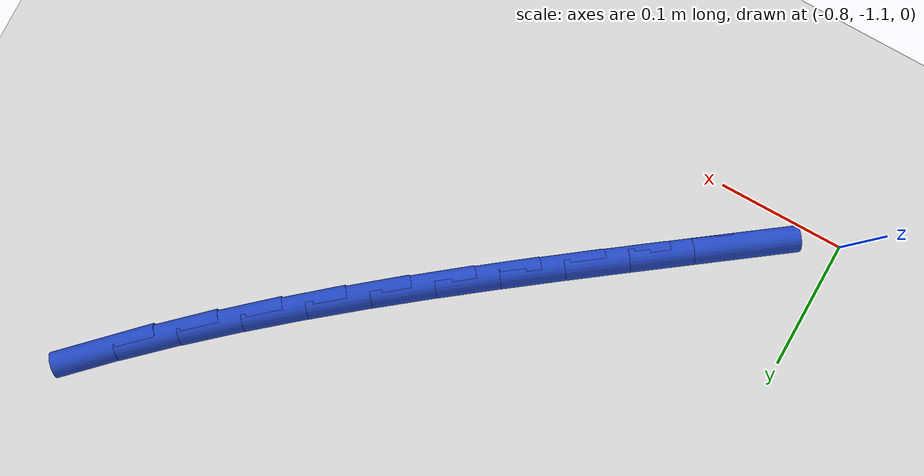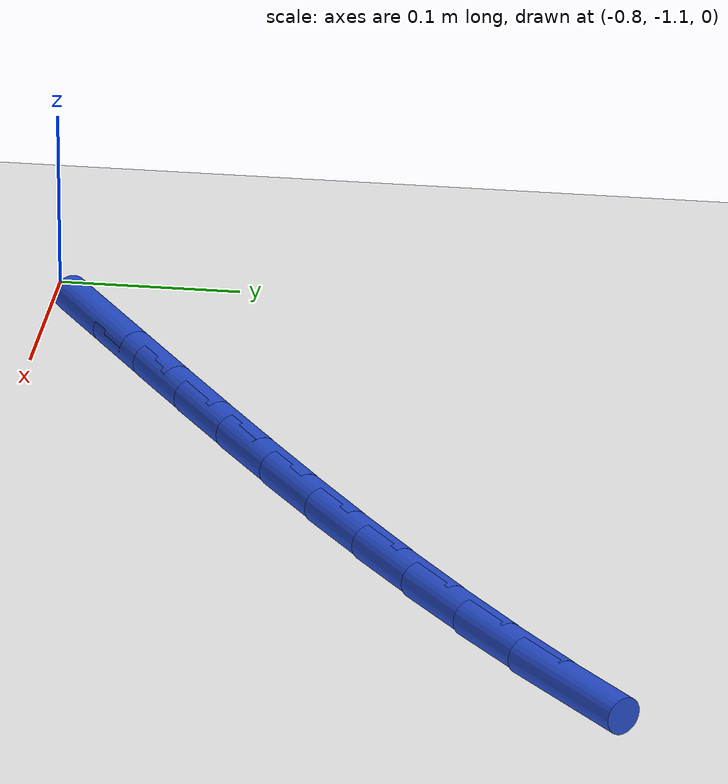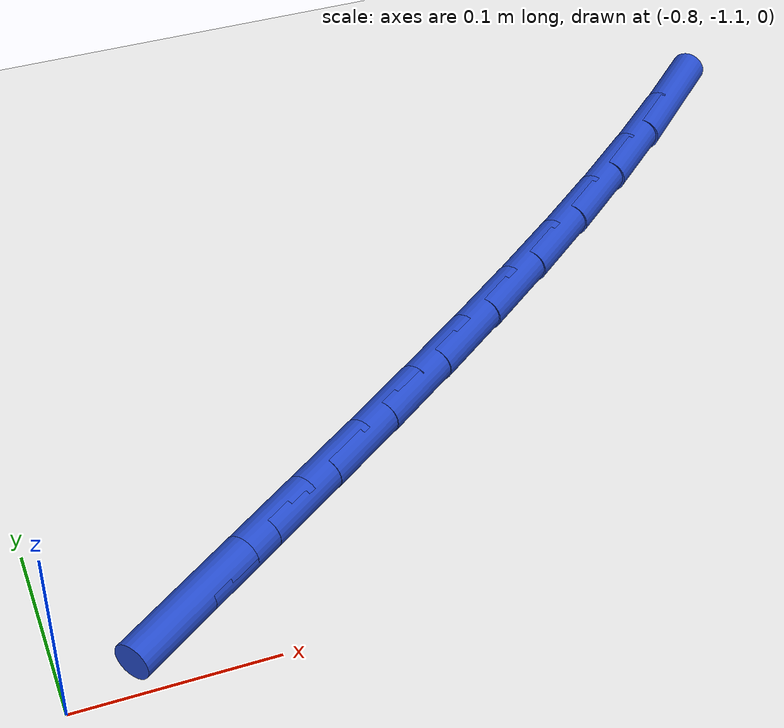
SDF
<sdf version="1.6">
 <world name="default">
  <model name="ground_plane">
   <static>1</static>
   <link name="link">
    <collision name="collision">
     <geometry><plane><normal>0 0 1</normal><size>100 100</size></plane></geometry>
     <surface><friction><ode><mu>100</mu><mu2>50</mu2></ode></friction></surface>
    </collision>
    <visual name="visual">
     <cast_shadows>0</cast_shadows>
     <geometry><plane><normal>0 0 1</normal><size>100 100</size></plane></geometry>
     <material>
      <script><uri>file://media/materials/scripts/gazebo.material</uri><name>Gazebo/WhiteGlow</name></script>
     </material>
    </visual>
   </link>
  </model>
  <model name="line">
   <link name="link_142">
    <pose>-0.7343752056745522 -1.0657094730027785 0.01 0 1.57 0.6196920327149557</pose>
    <collision name="collision">
     <geometry><cylinder><radius>0.01</radius><length>0.08</length></cylinder></geometry>
    </collision>
    <visual name="visual">
     <material>
      <script><name>Gazebo/Blue</name><uri>file://media/materials/scripts/gazebo.material</uri></script>
     </material>
     <geometry><cylinder><radius>0.01</radius><length>0.08</length></cylinder></geometry>
    </visual>
   </link>
   <link name="link_143">
    <pose>-0.6950390158072863 -1.037645297236098 0.01 0 1.57 0.6202710674736999</pose>
    <collision name="collision">
     <geometry><cylinder><radius>0.01</radius><length>0.08</length></cylinder></geometry>
    </collision>
    <visual name="visual">
     <material>
      <script><name>Gazebo/Blue</name><uri>file://media/materials/scripts/gazebo.material</uri></script>
     </material>
     <geometry><cylinder><radius>0.01</radius><length>0.08</length></cylinder></geometry>
    </visual>
   </link>
   <link name="link_144">
    <pose>-0.6556097875732984 -1.0094802776680678 0.01 0 1.57 0.6240919504746925</pose>
    <collision name="collision">
     <geometry><cylinder><radius>0.01</radius><length>0.08</length></cylinder></geometry>
    </collision>
    <visual name="visual">
     <material>
      <script><name>Gazebo/Blue</name><uri>file://media/materials/scripts/gazebo.material</uri></script>
     </material>
     <geometry><cylinder><radius>0.01</radius><length>0.08</length></cylinder></geometry>
    </visual>
   </link>
   <link name="link_145">
    <pose>-0.6162164442827183 -0.9811129492007283 0.01 0 1.57 0.6311474509096743</pose>
    <collision name="collision">
     <geometry><cylinder><radius>0.01</radius><length>0.08</length></cylinder></geometry>
    </collision>
    <visual name="visual">
     <material>
      <script><name>Gazebo/Blue</name><uri>file://media/materials/scripts/gazebo.material</uri></script>
     </material>
     <geometry><cylinder><radius>0.01</radius><length>0.08</length></cylinder></geometry>
    </visual>
   </link>
   <link name="link_146">
    <pose>-0.5769879092456769 -0.9524418467361204 0.01 0 1.57 0.641447163463078</pose>
    <collision name="collision">
     <geometry><cylinder><radius>0.01</radius><length>0.08</length></cylinder></geometry>
    </collision>
    <visual name="visual">
     <material>
      <script><name>Gazebo/Blue</name><uri>file://media/materials/scripts/gazebo.material</uri></script>
     </material>
     <geometry><cylinder><radius>0.01</radius><length>0.08</length></cylinder></geometry>
    </visual>
   </link>
   <link name="link_147">
    <pose>-0.5380531057723039 -0.9233655051762849 0.01 0 1.57 0.6550152759312293</pose>
    <collision name="collision">
     <geometry><cylinder><radius>0.01</radius><length>0.08</length></cylinder></geometry>
    </collision>
    <visual name="visual">
     <material>
      <script><name>Gazebo/Blue</name><uri>file://media/materials/scripts/gazebo.material</uri></script>
     </material>
     <geometry><cylinder><radius>0.01</radius><length>0.08</length></cylinder></geometry>
    </visual>
   </link>
   <link name="link_148">
    <pose>-0.4995409571727313 -0.8937824594232631 0.01 0 1.57 0.6718874452196216</pose>
    <collision name="collision">
     <geometry><cylinder><radius>0.01</radius><length>0.08</length></cylinder></geometry>
    </collision>
    <visual name="visual">
     <material>
      <script><name>Gazebo/Blue</name><uri>file://media/materials/scripts/gazebo.material</uri></script>
     </material>
     <geometry><cylinder><radius>0.01</radius><length>0.08</length></cylinder></geometry>
    </visual>
   </link>
   <link name="link_149">
    <pose>-0.461580386757089 -0.8635912443790961 0.01 0 1.57 0.6921066366455253</pose>
    <collision name="collision">
     <geometry><cylinder><radius>0.01</radius><length>0.08</length></cylinder></geometry>
    </collision>
    <visual name="visual">
     <material>
      <script><name>Gazebo/Blue</name><uri>file://media/materials/scripts/gazebo.material</uri></script>
     </material>
     <geometry><cylinder><radius>0.01</radius><length>0.08</length></cylinder></geometry>
    </visual>
   </link>
   <link name="link_150">
    <pose>-0.4243003178355073 -0.832690394945824 0.01 0 1.57 0.7157177542771939</pose>
    <collision name="collision">
     <geometry><cylinder><radius>0.01</radius><length>0.08</length></cylinder></geometry>
    </collision>
    <visual name="visual">
     <material>
      <script><name>Gazebo/Blue</name><uri>file://media/materials/scripts/gazebo.material</uri></script>
     </material>
     <geometry><cylinder><radius>0.01</radius><length>0.08</length></cylinder></geometry>
    </visual>
   </link>
   <link name="link_151">
    <pose>-0.3878296737181168 -0.800978446025488 0.01 0 1.57 0.7427608942790436</pose>
    <collision name="collision">
     <geometry><cylinder><radius>0.01</radius><length>0.08</length></cylinder></geometry>
    </collision>
    <visual name="visual">
     <material>
      <script><name>Gazebo/Blue</name><uri>file://media/materials/scripts/gazebo.material</uri></script>
     </material>
     <geometry><cylinder><radius>0.01</radius><length>0.08</length></cylinder></geometry>
    </visual>
   </link>
   <link name="link_152">
    <pose>-0.3522973777150479 -0.7683539325201291 0.01 0 1.57 0.7732631042830354</pose>
    <collision name="collision">
     <geometry><cylinder><radius>0.01</radius><length>0.08</length></cylinder></geometry>
    </collision>
    <visual name="visual">
     <material>
      <script><name>Gazebo/Blue</name><uri>file://media/materials/scripts/gazebo.material</uri></script>
     </material>
     <geometry><cylinder><radius>0.01</radius><length>0.08</length></cylinder></geometry>
    </visual>
   </link>
  </model>
 </world>
</sdf>
